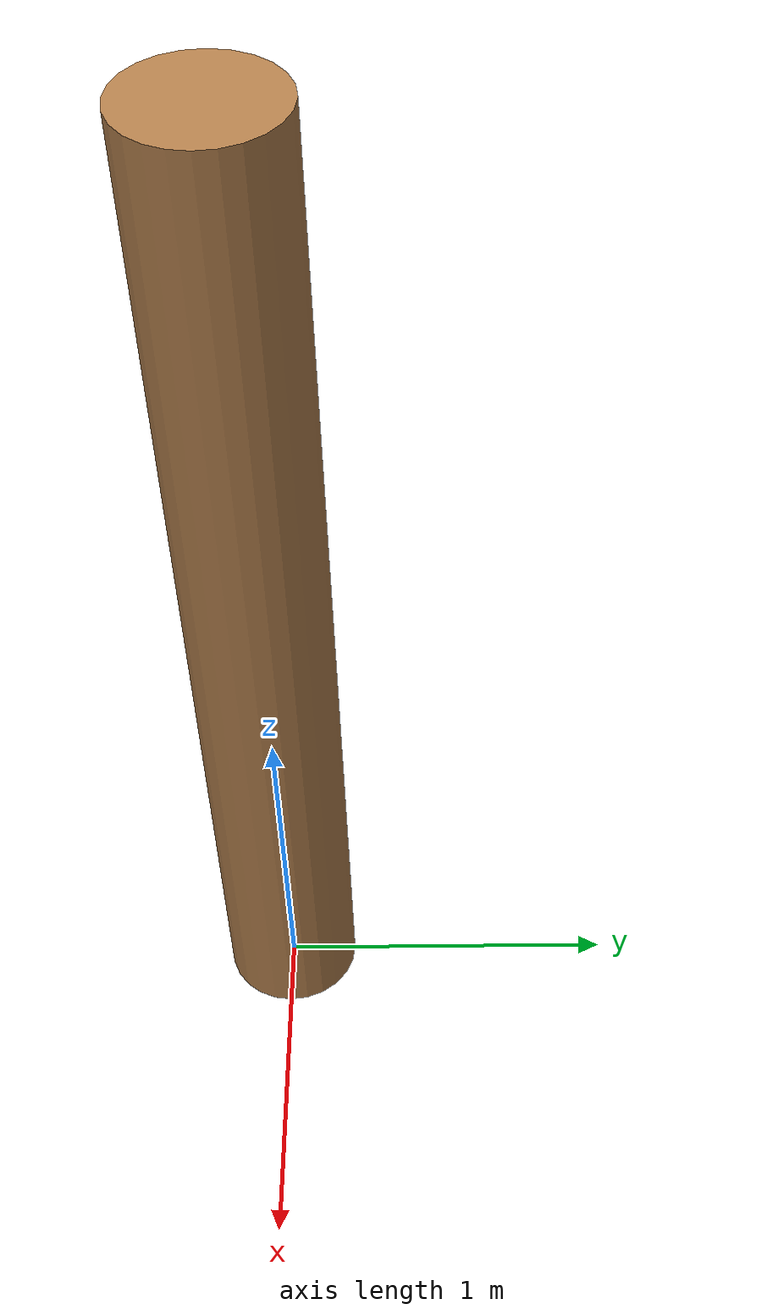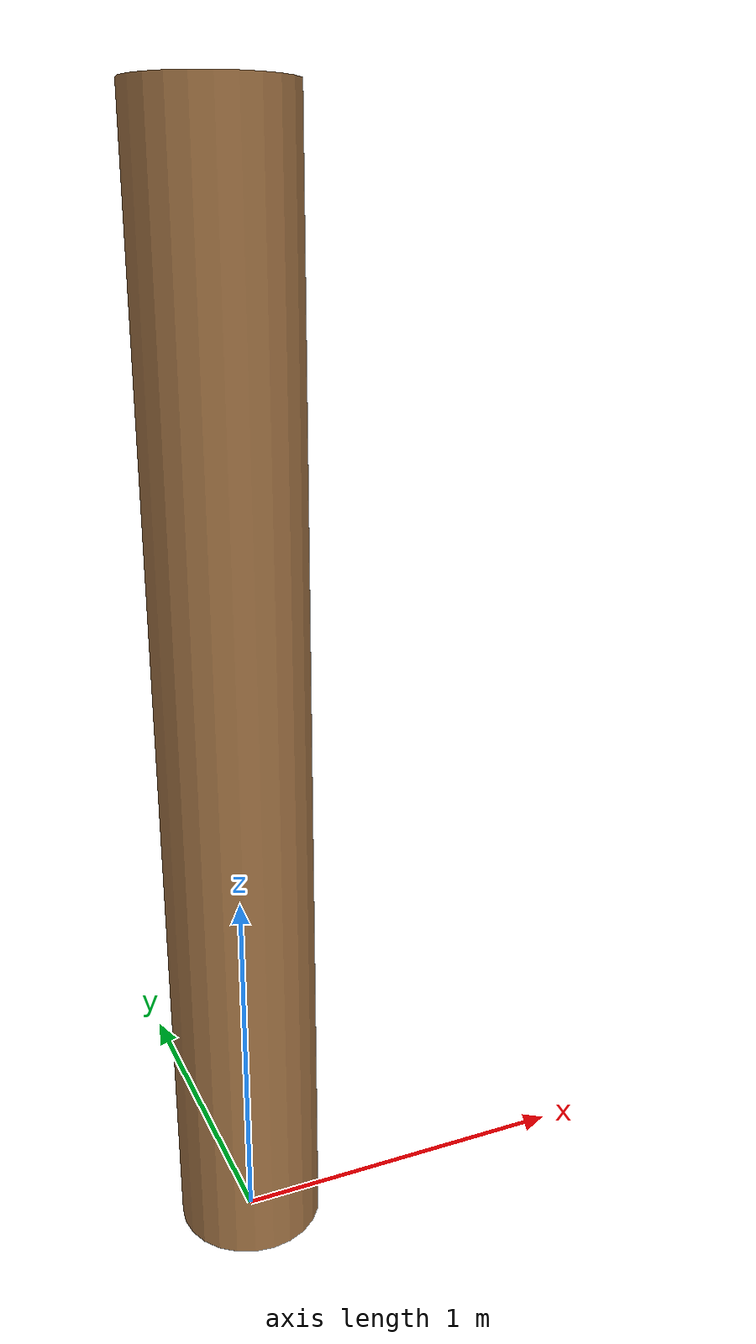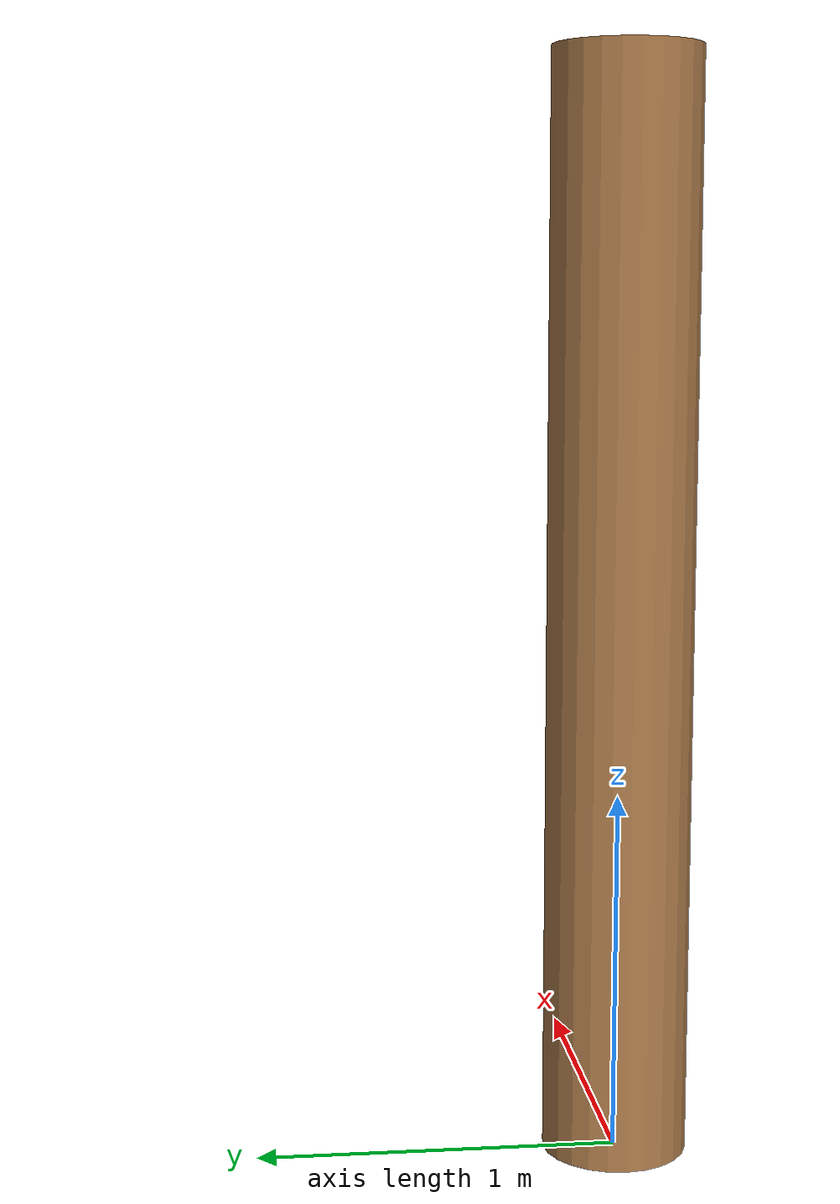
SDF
<?xml version="1.0"?>
<sdf version="1.4">

  <model name='tree'>
    <static>1</static>
    <link name='tree'>
      <pose>0 0 1.5 0 -0 0</pose>
      <inertial>
        <mass>1</mass>
        <inertia>
          <ixx>0.145833</ixx>
          <ixy>0</ixy>
          <ixz>0</ixz>
          <iyy>0.145833</iyy>
          <iyz>0</iyz>
          <izz>0.125</izz>
        </inertia>
        <pose>0 0 0 0 -0 0</pose>
      </inertial>
      <self_collide>0</self_collide>
      <kinematic>0</kinematic>
      <gravity>1</gravity>
      <visual name='visual'>
        <pose>0 0 0 0 -0 0</pose>
        <geometry>
          <cylinder>
            <radius>0.2</radius>
            <length>3</length>
          </cylinder>
        </geometry>
        <material>
          <script>
            <uri>file://media/materials/scripts/gazebo.material</uri>
            <name>Gazebo/Wood</name>
          </script>
          <ambient>0.3 0.3 0.3 1</ambient>
          <diffuse>0.7 0.7 0.7 1</diffuse>
          <specular>0.01 0.01 0.01 1</specular>
          <emissive>0 0 0 1</emissive>
          <shader type='vertex'>
            <normal_map>__default__</normal_map>
          </shader>
        </material>
        <cast_shadows>1</cast_shadows>
        <transparency>0</transparency>
      </visual>
      <collision name='collision'>
        <laser_retro>0</laser_retro>
        <max_contacts>10</max_contacts>
        <pose>0 0 0 0 -0 0</pose>
        <geometry>
          <cylinder>
            <radius>0.1</radius>
            <length>3</length>
          </cylinder>
        </geometry>
        <surface>
          <friction>
            <ode>
              <mu>1</mu>
              <mu2>1</mu2>
              <fdir1>0 0 0</fdir1>
              <slip1>0</slip1>
              <slip2>0</slip2>
            </ode>
          </friction>
          <bounce>
            <restitution_coefficient>0</restitution_coefficient>
            <threshold>1e+06</threshold>
          </bounce>
          <contact>
            <collide_without_contact>0</collide_without_contact>
            <collide_without_contact_bitmask>1</collide_without_contact_bitmask>
            <ode>
              <soft_cfm>0</soft_cfm>
              <soft_erp>0.2</soft_erp>
              <kp>1e+13</kp>
              <kd>1</kd>
              <max_vel>0.01</max_vel>
              <min_depth>0</min_depth>
            </ode>
            <bullet>
              <split_impulse>1</split_impulse>
              <split_impulse_penetration_threshold>-0.01</split_impulse_penetration_threshold>
              <soft_cfm>0</soft_cfm>
              <soft_erp>0.2</soft_erp>
              <kp>1e+13</kp>
              <kd>1</kd>
            </bullet>
          </contact>
        </surface>
      </collision>
    </link>
    <static>1</static>
    <allow_auto_disable>1</allow_auto_disable>
  </model>
</sdf>
